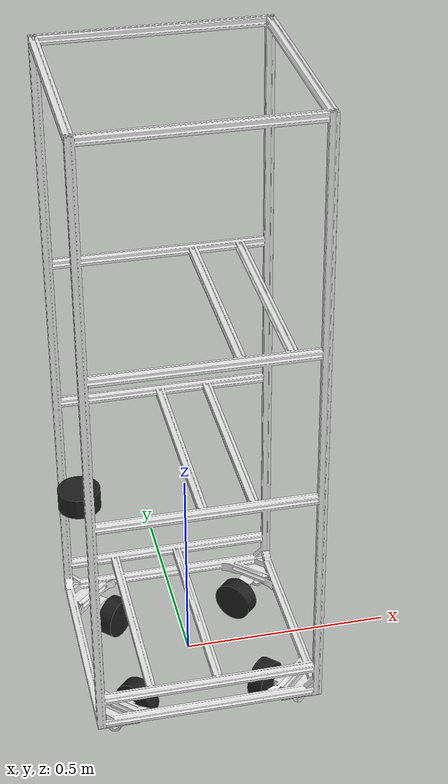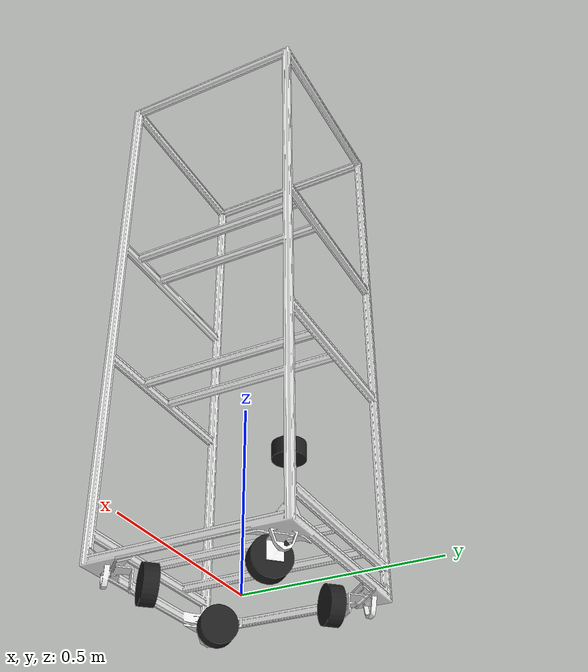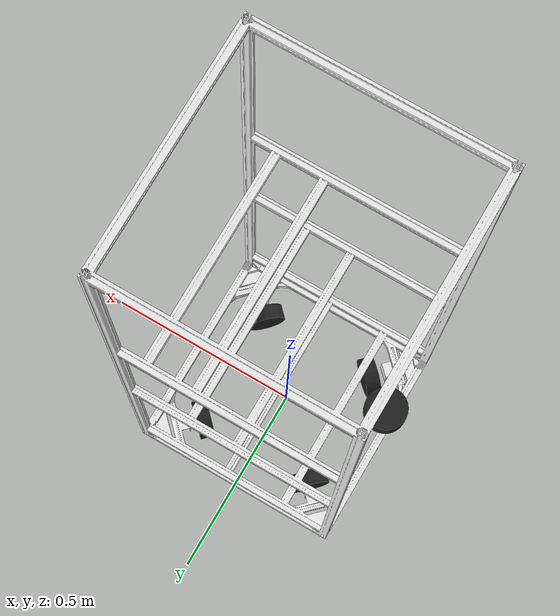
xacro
<?xml version="1.0"?>
<robot xmlns:xacro="http://www.ros.org/wiki/xacro">

    <xacro:include filename="inertial_macros.xacro"/>

    <!-- links and joints go here -->

    <!-- The rest of the robot can be described from base_link, which is the centre point of the four driving wheels -->
    <link name="base_link">
    </link>

    <!-- chassis joint goes here. It connects chassis to base_link via fixed joint -->
    <joint name="chassis_joint" type="fixed">
        <parent link="base_link"/>
        <child link="chassis"/>
        <origin xyz="0 0 0"/>
    </joint> launch-prefix="bash -c 'sleep 5; $0 $@'"
    <!-- chassis description goes here. It describes the chassis of robocock which is a 54cm x 54cm x 150cm box -->
    <link name="chassis">
        <visual>
            <!-- by default, the origin is centred around the link origin, so offset it by half the height -->
            <geometry>
                <mesh filename="package://robocock/meshes/frame_ultra_low_poly.stl"/>
            </geometry>
            <material name="white"/>
        </visual>
        <!-- physics model -->
        <collision>
            <origin xyz="0 0 0.75" rpy="0 0 0"/>
            <geometry>
                <box size="0.54 0.54 1.5"/>
            </geometry>
        </collision>
        <xacro:inertial_box mass="10" x="0.54" y="0.54" z="1.5">
            <origin xyz="0 0 0.75" rpy="0 0 0"/>
        </xacro:inertial_box>
    </link>
    <joint name="laser_joint" type="fixed">
        <parent link="chassis"/>
        <child link="laser"/>
        <origin xyz="-0.25 0 0.5" rpy="0 0 0"/>
    </joint>
    <link name="laser">
        <visual>
            <origin xyz="0 0 0" rpy="0 0 0"/>
            <geometry>
                <cylinder length="0.05" radius="0.05"/>
            </geometry>
            <material name="black"/>
        </visual>
    </link>
    <!-- gazebo specific description -->
    <gazebo reference="chassis">
        <material>Gazebo/White</material>
    </gazebo>

    <!-- FRONT LEFT WHEEL AKA wheel_1 -->
    <joint name="wheel_1_joint" type="continuous">
        <parent link="base_link"/>
        <child link="wheel_1"/>
        <origin xyz="0.1575 0.1575 0" rpy="-${pi/2} 0 -${pi/4}"/>
        <axis xyz="0 0 1"/>
    </joint>

    <link name="wheel_1">
        <visual>
            <geometry>
                <cylinder length="0.038" radius="0.05" />
            </geometry>
            <material name="black"/>
        </visual>
        <collision>
            <geometry>
                <cylinder length="0.038" radius="0.05" />
            </geometry>
        </collision>
        <xacro:inertial_cylinder mass="0.2" length="0.038" radius="0.05">
            <origin xyz="0 0 0" rpy="0 0 0"/>
        </xacro:inertial_cylinder>
    </link>

    <gazebo reference="wheel_1">
        <material>Gazebo/Black</material>
        <mu1 value="0.2"/>
        <mu2 value="1.5"/>
        <kp value="10000000.0" />
        <kd value="10000.0" />
        <fdir1 value="0 0 1"/>
        <maxContacts value= "1"/>
    </gazebo>

    <!-- FRONT RIGHT WHEEL AKA wheel_2 -->
    <joint name="wheel_2_joint" type="continuous">
        <parent link="base_link"/>
        <child link="wheel_2"/>
        <origin xyz="0.1575 -0.1575 0" rpy="${pi/2} 0 ${pi/4}"/>
        <axis xyz="0 0 -1"/>
    </joint>

    <link name="wheel_2">
        <visual>
            <geometry>
                <cylinder length="0.038" radius="0.05" />
            </geometry>
            <material name="black"/>
        </visual>
        <collision>
            <geometry>
                <cylinder length="0.038" radius="0.05" />
            </geometry>
        </collision>
        <xacro:inertial_cylinder mass="0.2" length="0.038" radius="0.05">
            <origin xyz="0 0 0" rpy="0 0 0"/>
        </xacro:inertial_cylinder>
    </link>

    <gazebo reference="wheel_2">
        <material>Gazebo/Black</material>
        <mu1 value="0.2"/>
        <mu2 value="1.5"/>
        <kp value="10000000.0" />
        <kd value="10000.0" />
        <fdir1 value="0 0 1"/>
        <maxContacts value= "1"/>
    </gazebo>

    <!-- REAR LEFT WHEEL AKA wheel_3 -->
    <joint name="wheel_3_joint" type="continuous">
        <parent link="base_link"/>
        <child link="wheel_3"/>
        <origin xyz="-0.1575 0.1575 0" rpy="-${pi/2} 0 ${pi/4}"/>
        <axis xyz="0 0 1"/>
    </joint>

    <link name="wheel_3">
        <visual>
            <geometry>
                <cylinder length="0.038" radius="0.05" />
            </geometry>
            <material name="black"/>
        </visual>
        <collision>
            <geometry>
                <cylinder length="0.038" radius="0.05" />
            </geometry>
        </collision>
        <xacro:inertial_cylinder mass="0.2" length="0.038" radius="0.05">
            <origin xyz="0 0 0" rpy="0 0 0"/>
        </xacro:inertial_cylinder>
    </link>

    <gazebo reference="wheel_3">
        <material>Gazebo/Black</material>
        <mu1 value="0.2"/>
        <mu2 value="1.5"/>
        <kp value="10000000.0" />
        <kd value="10000.0" />
        <fdir1 value="0 0 1"/>
        <maxContacts value= "1"/>
    </gazebo>

    <!-- REAR RIGHT WHEEL AKA wheel_4 -->
    <joint name="wheel_4_joint" type="continuous">
        <parent link="base_link"/>
        <child link="wheel_4"/>
        <origin xyz="-0.1575 -0.1575 0" rpy="${pi/2} 0 -${pi/4}"/>
        <axis xyz="0 0 -1"/>
    </joint>

    <link name="wheel_4">
        <visual>
            <geometry>
                <cylinder length="0.038" radius="0.05" />
            </geometry>
            <material name="black"/>
        </visual>
        <collision>
            <geometry>
                <cylinder length="0.038" radius="0.05" />
            </geometry>
        </collision>
        <xacro:inertial_cylinder mass="0.2" length="0.038" radius="0.05">
            <origin xyz="0 0 0" rpy="0 0 0"/>
        </xacro:inertial_cylinder>
    </link>

    <gazebo reference="wheel_4">
        <material>Gazebo/Black</material>
        <mu1 value="0.2"/>
        <mu2 value="1.5"/>
        <kp value="10000000.0" />
        <kd value="10000.0" />
        <fdir1 value="0 0 1"/>
        <maxContacts value= "1"/>
    </gazebo>

    <!-- Transmissions -->
    <transmission name="tran1">
        <type>transmission_interface/SimpleTransmission</type>
        <joint name="wheel_1_joint">
            <hardwareInterface>hardware_interface/VelocityJointInterface</hardwareInterface>
        </joint>
        <actuator name="motor_1">
            <hardwareInterface>VelocityJointInterface</hardwareInterface>
            <mechanicalReduction>1</mechanicalReduction>
        </actuator>
    </transmission>

    <transmission name="tran2">
        <type>transmission_interface/SimpleTransmission</type>
        <joint name="wheel_2_joint">
            <hardwareInterface>hardware_interface/VelocityJointInterface</hardwareInterface>
        </joint>
        <actuator name="motor_2">
            <hardwareInterface>VelocityJointInterface</hardwareInterface>
            <mechanicalReduction>1</mechanicalReduction>
        </actuator>
    </transmission>

    <transmission name="tran3">
        <type>transmission_interface/SimpleTransmission</type>
        <joint name="wheel_3_joint">
            <hardwareInterface>hardware_interface/VelocityJointInterface</hardwareInterface>
        </joint>
        <actuator name="motor_3">
            <hardwareInterface>VelocityJointInterface</hardwareInterface>
            <mechanicalReduction>1</mechanicalReduction>
        </actuator>
    </transmission>

    <transmission name="tran4">
        <type>transmission_interface/SimpleTransmission</type>
        <joint name="wheel_4_joint">
            <hardwareInterface>hardware_interface/VelocityJointInterface</hardwareInterface>
        </joint>
        <actuator name="motor_4">
            <hardwareInterface>VelocityJointInterface</hardwareInterface>
            <mechanicalReduction>1</mechanicalReduction>
        </actuator>
    </transmission>

    <gazebo>
        <plugin name="gazebo_ros_control" filename="libgazebo_ros_control.so">
        </plugin>
    </gazebo>

</robot>

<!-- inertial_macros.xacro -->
<robot xmlns:xacro="http://www.ros.org/wiki/xacro" >

    <!-- Specify some standard inertial calculations https://en.wikipedia.org/wiki/List_of_moments_of_inertia -->
    <!-- These make use of xacro's mathematical functionality -->

    <xacro:macro name="inertial_sphere" params="mass radius *origin">
        <inertial>
            <xacro:insert_block name="origin"/>
            <mass value="${mass}" />
            <inertia ixx="${(2/5) * mass * (radius*radius)}" ixy="0.0" ixz="0.0"
                    iyy="${(2/5) * mass * (radius*radius)}" iyz="0.0"
                    izz="${(2/5) * mass * (radius*radius)}" />
        </inertial>
    </xacro:macro>

    <xacro:macro name="inertial_box" params="mass x y z *origin">
        <inertial>
            <xacro:insert_block name="origin"/>
            <mass value="${mass}" />
            <inertia ixx="${(1/12) * mass * (y*y+z*z)}" ixy="0.0" ixz="0.0"
                    iyy="${(1/12) * mass * (x*x+z*z)}" iyz="0.0"
                    izz="${(1/12) * mass * (x*x+y*y)}" />
        </inertial>
    </xacro:macro>

    <xacro:macro name="inertial_cylinder" params="mass length radius *origin">
        <inertial>
            <xacro:insert_block name="origin"/>
            <mass value="${mass}" />
            <inertia ixx="${(1/12) * mass * (3*radius*radius + length*length)}" ixy="0.0" ixz="0.0"
                    iyy="${(1/12) * mass * (3*radius*radius + length*length)}" iyz="0.0"
                    izz="${(1/2) * mass * (radius*radius)}" />
        </inertial>
    </xacro:macro>

</robot>
